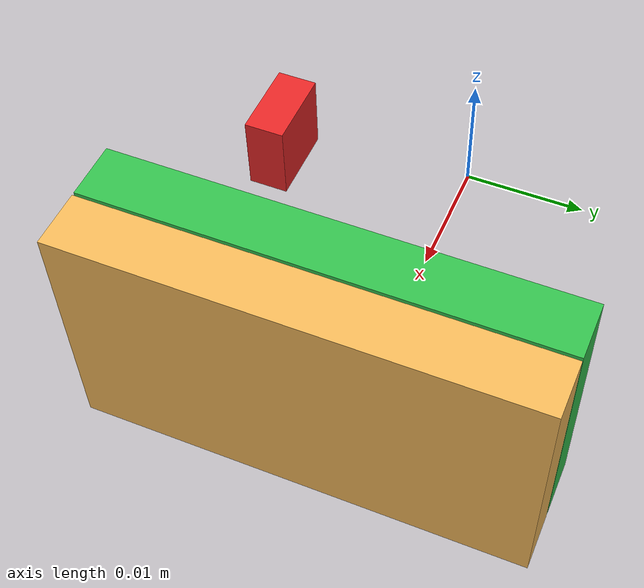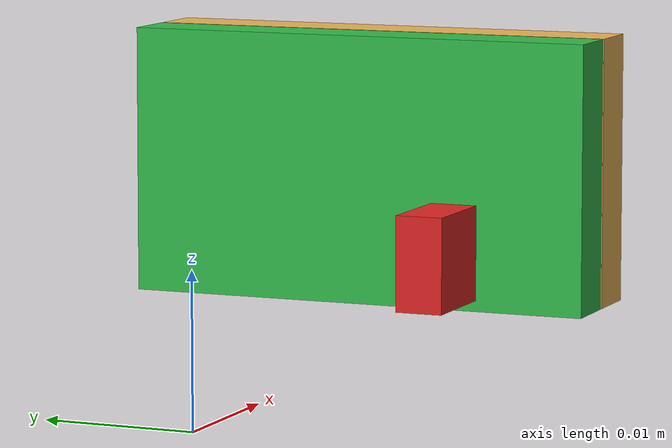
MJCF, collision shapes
<?xml version="1.0" ?>
<mujoco model="contact_latched_drawer">
  <compiler angle="radian" autolimits="true" meshdir="/home/ftk3187/github/ASSY/m25_contact_layer/out/ld_assets"/>
  <option timestep="0.0005" integrator="implicitfast" cone="elliptic" impratio="10" gravity="0.000000000 0.000000000 -9.810000000"/>
  <visual>
    <headlight ambient="0.5 0.5 0.5" diffuse="0.6 0.6 0.6" specular="0.2 0.2 0.2"/>
    <global offwidth="1280" offheight="960"/>
  </visual>
  <default>
    <geom solref="0.001 1.0" solimp="0.99 0.9999 0.0001" friction="0.30 0.005 0.0001" condim="4" density="0" contype="0" conaffinity="0"/>
  </default>
  <asset>
    <material name="cab" rgba="0.60 0.66 0.72 0.30"/>
    <material name="bump" rgba="0.85 0.30 0.30 1"/>
    <material name="drawer" rgba="0.95 0.72 0.35 1"/>
    <material name="clip" rgba="0.20 0.55 0.95 1"/>
    <material name="stop" rgba="0.20 0.75 0.30 1"/>
    <material name="mk" rgba="0.90 0.15 0.15 1"/>
    <mesh name="m_cabinet_body" file="cabinet_body.stl"/>
    <mesh name="m_bump" file="bump.stl"/>
    <mesh name="m_drawer_body" file="drawer_body.stl"/>
    <mesh name="m_clip" file="clip.stl"/>
  </asset>
  <worldbody>
    <light pos="0.1 -0.2 0.4" dir="-0.2 0.3 -1" directional="true" diffuse="0.5 0.5 0.5"/>
    <camera name="cutaway" pos="0.03 -0.12 0.055" xyaxes="1 0 0 0 0.4 0.92"/>
    <geom name="face_frame" type="box" pos="0.028000000 0.000000000 0.013000000" size="0.002000000 0.016000000 0.009000000" material="stop"/>
    <geom name="cab_mesh" type="mesh" mesh="m_cabinet_body" material="cab"/>
    <geom name="bump_mesh" type="mesh" mesh="m_bump" material="bump"/>
    <body name="drawer" pos="0.000000000 0.000000000 0.000000000">
      <inertial mass="0.050000000" pos="0.010594758 0.000166937 0.010338734" diaginertia="0.000024324 0.000020368 0.000041474"/>
      <joint name="drawer_slide" type="slide" axis="1.000000000 0.000000000 0.000000000" pos="0.000000000 0.000000000 0.000000000" damping="30.0" limited="false"/>
      <geom name="panel_pad" type="box" pos="0.032200000 0.000000000 0.013000000" size="0.002000000 0.016000000 0.009000000" material="drawer"/>
      <geom name="dr_mesh" type="mesh" mesh="m_drawer_body" material="drawer"/>
      <geom name="clip_mesh" type="mesh" mesh="m_clip" material="clip"/>
      <geom name="mk_drawer" type="box" pos="0.010000000 -0.012000000 0.010000000" size="0.003000000 0.001500000 0.003000000" material="mk"/>
    </body>
  </worldbody>
  <contact>
    <pair geom1="panel_pad" geom2="face_frame" condim="4" solref="0.001 1.0" solimp="0.99 0.9999 0.0001" friction="0.30 0.005 0.0001"/>
  </contact>
  <actuator>
    <velocity name="drive" joint="drawer_slide" kv="40.0"/>
  </actuator>
</mujoco>
